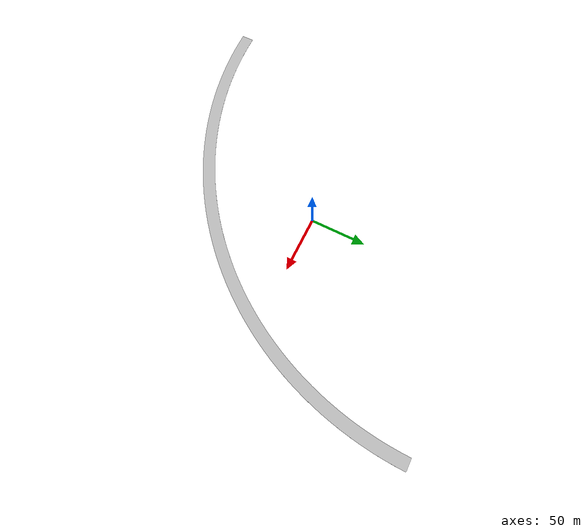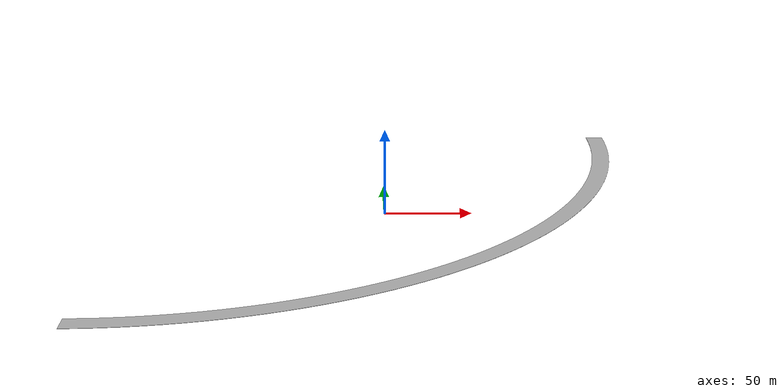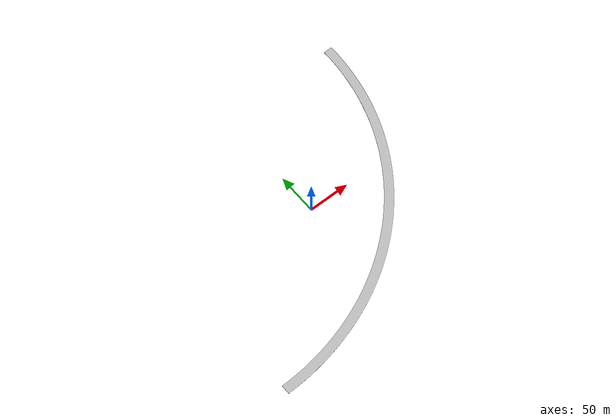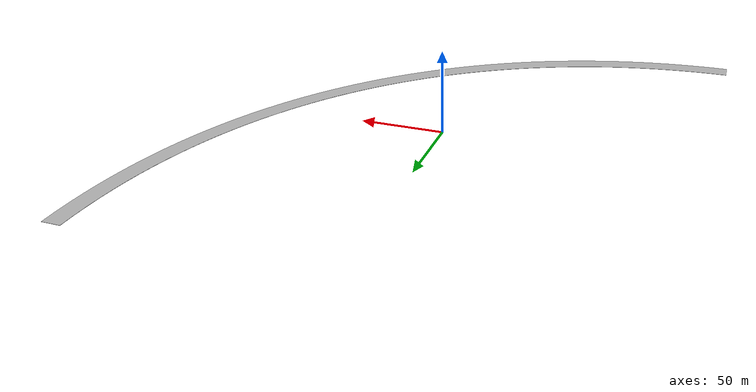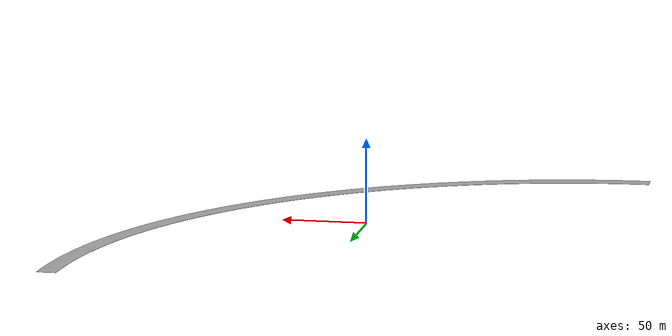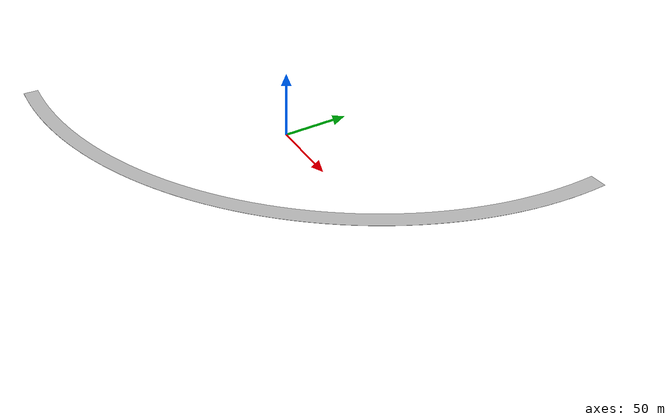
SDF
<?xml version="1.0" ?>
<sdf version="1.4">
  <model name="(DS) Left Road - 500m">
    <static>true</static>
    <link name="link">
      <inertial>
        <pose>0 0 0 0 0 0</pose>
        <mass>1</mass>
        <inertia>
          <ixx>1</ixx>
          <iyy>1</iyy>
          <izz>1</izz>
          <ixy>0</ixy>
          <ixz>0</ixz>
        </inertia>
      </inertial>
      <collision name="collision">
        <geometry>
          <mesh>
            <uri>model://ds_left_road_500m/meshes/curved_road_500m.dae</uri>
          </mesh>
        </geometry>
      </collision>

      <visual name="visual">
        <geometry>
          <mesh>
            <uri>model://ds_left_road_500m/meshes/curved_road_500m.dae</uri>
          </mesh>
        </geometry>
      </visual>
    </link>
  </model>
</sdf>
